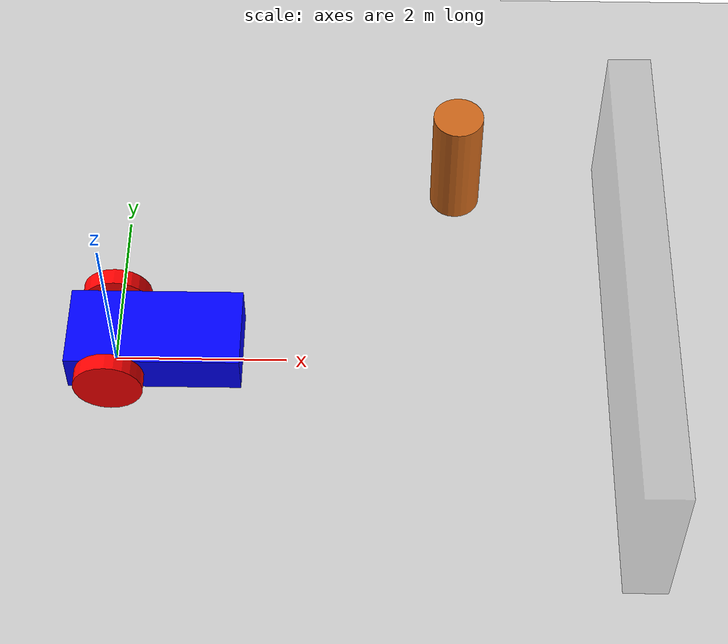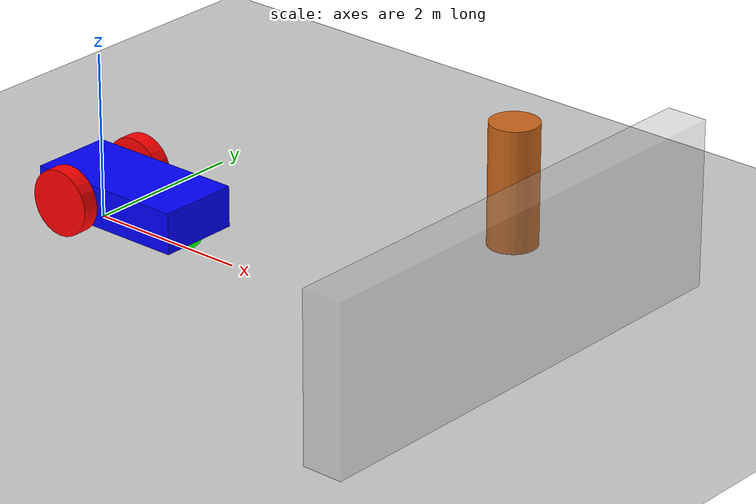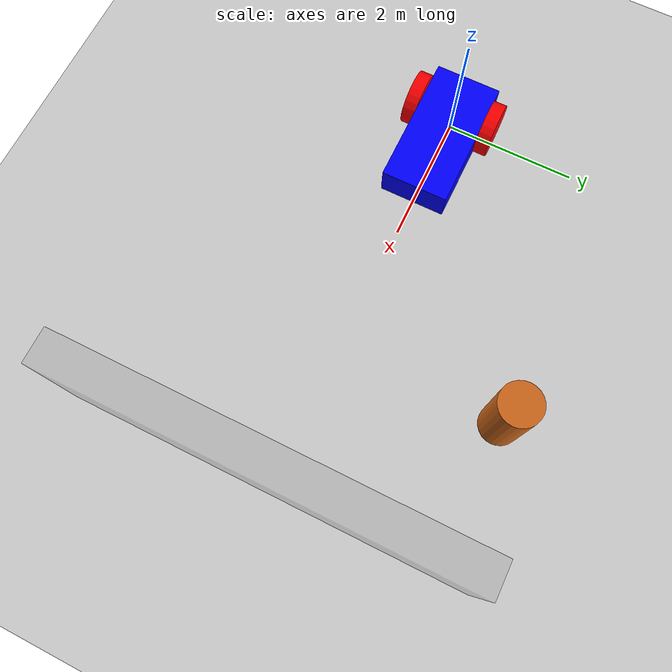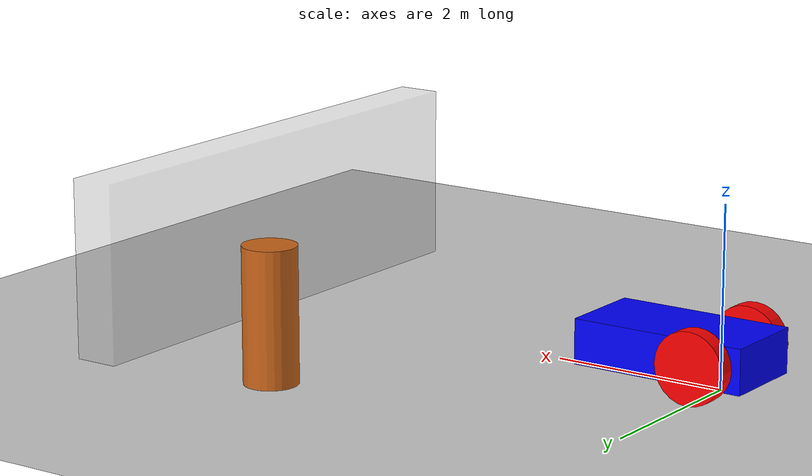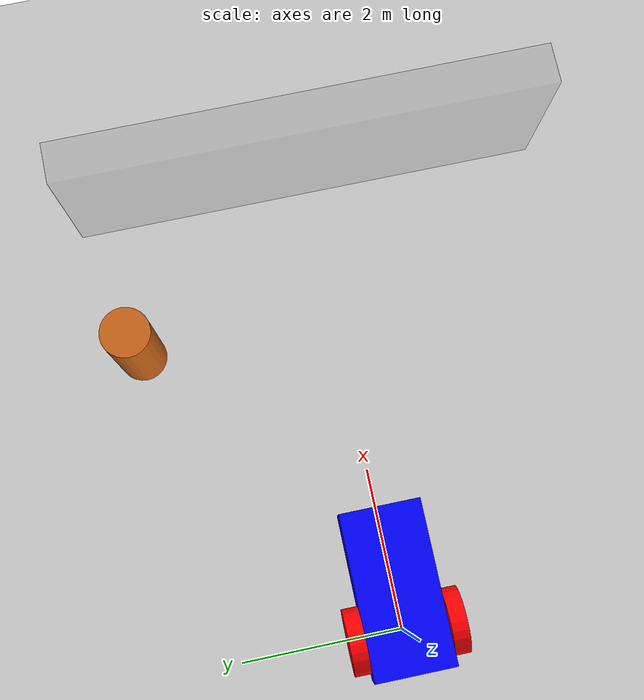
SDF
<?xml version="1.0"?>
<sdf version="1.8">
  <world name="car_world">
    <physics name="1ms" type="ignored">
      <max_step_size>0.001</max_step_size>
      <real_time_factor>1.0</real_time_factor>
    </physics>
    <plugin filename="libgz-sim-sensors-system.so" name="gz::sim::systems::Sensors">
      <render_engine>ogre2</render_engine>
    </plugin>
    <plugin filename="libgz-sim-imu-system.so" name="gz::sim::systems::Imu" />
    <plugin filename="gz-sim-physics-system" name="gz::sim::systems::Physics" />
    <plugin filename="gz-sim-user-commands-system" name="gz::sim::systems::UserCommands" />
    <plugin filename="gz-sim-scene-broadcaster-system" name="gz::sim::systems::SceneBroadcaster" />
    <light type="directional" name="sun">
      <cast_shadows>true</cast_shadows>
      <pose>0 0 10 0 0 0</pose>
      <diffuse>0.8 0.8 0.8 1</diffuse>
      <specular>0.2 0.2 0.2 1</specular>
      <attenuation>
        <range>1000</range>
        <constant>0.9</constant>
        <linear>0.01</linear>
        <quadratic>0.001</quadratic>
      </attenuation>
      <direction>-0.5 0.1 -0.9</direction>
    </light>
    <model name="ground_plane">
      <static>true</static>
      <link name="link">
        <collision name="collision">
          <geometry>
            <plane>
              <normal>0 0 1</normal>
            </plane>
          </geometry>
        </collision>
        <visual name="visual">
          <geometry>
            <plane>
              <normal>0 0 1</normal>
              <size>100 100</size>
            </plane>
          </geometry>
          <material>
            <ambient>0.8 0.8 0.8 1</ambient>
            <diffuse>0.8 0.8 0.8 1</diffuse>
            <specular>0.8 0.8 0.8 1</specular>
          </material>
        </visual>
      </link>
    </model>
    <!-- Single source of truth for the robot: models/vehicle_blue/model.sdf. Resolved via GZ_SIM_RESOURCE_PATH, set in launch/sim.launch.py -->
    <include>
      <uri>model://vehicle_blue</uri>
      <pose>0 0 0 0 0 0</pose>
    </include>
    <!-- Obstacles. Without something in range the gpu_lidar returns inf on every
         beam and RViz has nothing to draw, so the testbed looks broken. -->
    <model name="wall_front">
      <static>true</static>
      <pose>6 0 1 0 0 0</pose>
      <link name="link">
        <visual name="visual">
          <geometry><box><size>0.5 6 2</size></box></geometry>
          <!-- Weak lidar return: the barrier is meant to look like dust, not
               a hard obstacle. gz-sensors maps laser_retro -> point intensity. -->
          <laser_retro>0</laser_retro>
          <transparency>0.7</transparency>
          <material>
            <ambient>0.6 0.6 0.6 0.3</ambient>
            <diffuse>0.6 0.6 0.6 0.3</diffuse>
          </material>
        </visual>
        <collision name="collision">
          <geometry><box><size>0.5 6 2</size></box></geometry>
        </collision>
      </link>
    </model>
    <model name="pillar_left">
      <static>true</static>
      <pose>4 2.5 0.75 0 0 0</pose>
      <link name="link">
        <visual name="visual">
          <geometry><cylinder><radius>0.3</radius><length>1.5</length></cylinder></geometry>
          <!-- Retroreflective: the poles come back hot in the intensity field.
               2000 is gz-sensors' maximum; higher values are clamped to it. -->
          <laser_retro>2000</laser_retro>
          <material>
            <ambient>0.8 0.4 0.1 1</ambient>
            <diffuse>0.8 0.4 0.1 1</diffuse>
          </material>
        </visual>
        <collision name="collision">
          <geometry><cylinder><radius>0.3</radius><length>1.5</length></cylinder></geometry>
        </collision>
      </link>
    </model>
  </world>
</sdf>

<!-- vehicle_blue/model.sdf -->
<sdf version="1.8">
  <model name="vehicle_blue" canonical_link="chassis">
    <plugin filename="libgz-sim-diff-drive-system.so" name="gz::sim::systems::DiffDrive">
      <left_joint>left_wheel_joint</left_joint>
      <right_joint>right_wheel_joint</right_joint>
      <wheel_separation>1.2</wheel_separation>
      <wheel_radius>0.4</wheel_radius>
      <odom_publish_frequency>50</odom_publish_frequency>
      <topic>cmd_vel</topic>
      <!-- Unscoped names: gz defaults to vehicle_blue/chassis, which would not
           match the frames robot_state_publisher derives from this file. -->
      <frame_id>odom</frame_id>
      <child_frame_id>chassis</child_frame_id>
    </plugin>
    <!-- Publishes wheel angles so robot_state_publisher can animate the TF tree -->
    <plugin filename="libgz-sim-joint-state-publisher-system.so" name="gz::sim::systems::JointStatePublisher" />
    <!-- chassis -->
    <link name="chassis">
      <pose relative_to="__model__">0.5 0 0.4 0 0 0</pose>
      <inertial>
        <!-- inertial properties of the link mass, inertia matix -->
        <mass>1.14395</mass>
        <inertia>
          <ixx>0.095329</ixx>
          <ixy>0</ixy>
          <ixz>0</ixz>
          <iyy>0.381317</iyy>
          <iyz>0</iyz>
          <izz>0.476646</izz>
        </inertia>
      </inertial>
      <visual name="visual">
        <geometry>
          <box>
            <size>2.0 1.0 0.5</size>
          </box>
        </geometry>
        <!-- Color of the link -->
        <material>
          <ambient>0.0 0.0 1.0 1</ambient>
          <diffuse>0.0 0.0 1.0 1</diffuse>
          <specular>0.0 0.0 1.0 1</specular>
        </material>
      </visual>
      <collision name="collision">
        <geometry>
          <box>
            <size>2.0 1.0 0.5</size>
          </box>
        </geometry>
      </collision>
      <sensor name="imu_sensor" type="imu">
        <always_on>1</always_on>
        <update_rate>1</update_rate>
        <visualize>true</visualize>
        <topic>imu</topic>
        <gz_frame_id>chassis</gz_frame_id>
      </sensor>
      <sensor name="gpu_lidar" type="gpu_lidar">
        <pose relative_to="lidar_frame">0 0 0 0 0 0</pose>
        <topic>lidar</topic>
        <gz_frame_id>chassis</gz_frame_id>
        <update_rate>10</update_rate>
        <ray>
          <scan>
            <horizontal>
              <samples>640</samples>
              <resolution>1</resolution>
              <min_angle>-1.396263</min_angle>
              <max_angle>1.396263</max_angle>
            </horizontal>
            <vertical>
              <samples>1</samples>
              <resolution>0.01</resolution>
              <min_angle>0</min_angle>
              <max_angle>0</max_angle>
            </vertical>
          </scan>
          <range>
            <min>0.08</min>
            <max>10.0</max>
            <resolution>0.01</resolution>
          </range>
        </ray>
        <always_on>1</always_on>
        <visualize>true</visualize>
      </sensor>
    </link>
    <frame name="lidar_frame" attached_to="chassis">
      <pose>0.8 0 0.5 0 0 0</pose>
    </frame>
    <!-- Left wheel -->
    <link name="left_wheel">
      <pose relative_to="chassis">-0.5 0.6 0 -1.5707 0 0</pose>
      <!-- angles are in radian -->
      <inertial>
        <mass>1</mass>
        <inertia>
          <ixx>0.043333</ixx>
          <ixy>0</ixy>
          <ixz>0</ixz>
          <iyy>0.043333</iyy>
          <iyz>0</iyz>
          <izz>0.08</izz>
        </inertia>
      </inertial>
      <visual name="visual">
        <geometry>
          <cylinder>
            <radius>0.4</radius>
            <length>0.2</length>
          </cylinder>
        </geometry>
        <material>
          <ambient>1.0 0.0 0.0 1</ambient>
          <diffuse>1.0 0.0 0.0 1</diffuse>
          <specular>1.0 0.0 0.0 1</specular>
        </material>
      </visual>
      <collision name="collision">
        <geometry>
          <cylinder>
            <radius>0.4</radius>
            <length>0.2</length>
          </cylinder>
        </geometry>
      </collision>
    </link>
    <!-- The same as left wheel but with different position -->
    <link name="right_wheel">
      <pose relative_to="chassis">-0.5 -0.6 0 -1.5707 0 0</pose>
      <!-- angles are in radian -->
      <inertial>
        <mass>1</mass>
        <inertia>
          <ixx>0.043333</ixx>
          <ixy>0</ixy>
          <ixz>0</ixz>
          <iyy>0.043333</iyy>
          <iyz>0</iyz>
          <izz>0.08</izz>
        </inertia>
      </inertial>
      <visual name="visual">
        <geometry>
          <cylinder>
            <radius>0.4</radius>
            <length>0.2</length>
          </cylinder>
        </geometry>
        <material>
          <ambient>1.0 0.0 0.0 1</ambient>
          <diffuse>1.0 0.0 0.0 1</diffuse>
          <specular>1.0 0.0 0.0 1</specular>
        </material>
      </visual>
      <collision name="collision">
        <geometry>
          <cylinder>
            <radius>0.4</radius>
            <length>0.2</length>
          </cylinder>
        </geometry>
      </collision>
    </link>
    <!-- arbitrary frame -->
    <frame name="caster_frame" attached_to="chassis">
      <pose>0.8 0 -0.2 0 0 0</pose>
    </frame>
    <!-- caster wheel -->
    <link name="caster">
      <pose relative_to="caster_frame" />
      <inertial>
        <mass>1</mass>
        <inertia>
          <ixx>0.016</ixx>
          <ixy>0</ixy>
          <ixz>0</ixz>
          <iyy>0.016</iyy>
          <iyz>0</iyz>
          <izz>0.016</izz>
        </inertia>
      </inertial>
      <visual name="visual">
        <geometry>
          <sphere>
            <radius>0.2</radius>
          </sphere>
        </geometry>
        <material>
          <ambient>0.0 1 0.0 1</ambient>
          <diffuse>0.0 1 0.0 1</diffuse>
          <specular>0.0 1 0.0 1</specular>
        </material>
      </visual>
      <collision name="collision">
        <geometry>
          <sphere>
            <radius>0.2</radius>
          </sphere>
        </geometry>
      </collision>
    </link>
    <!-- left wheel joint -->
    <joint name="left_wheel_joint" type="revolute">
      <pose relative_to="left_wheel" />
      <parent>chassis</parent>
      <child>left_wheel</child>
      <axis>
        <xyz expressed_in="__model__">0 1 0</xyz>
        <!-- can be descired to any frame or even arbitrary frames -->
        <limit>
          <lower>-1.79769e+308</lower>
          <!-- negative infinity -->
          <upper>1.79769e+308</upper>
          <!-- positive infinity -->
        </limit>
      </axis>
    </joint>
    <!-- right wheel joint -->
    <joint name="right_wheel_joint" type="revolute">
      <pose relative_to="right_wheel" />
      <parent>chassis</parent>
      <child>right_wheel</child>
      <axis>
        <xyz expressed_in="__model__">0 1 0</xyz>
        <limit>
          <lower>-1.79769e+308</lower>
          <!-- negative infinity -->
          <upper>1.79769e+308</upper>
          <!-- positive infinity -->
        </limit>
      </axis>
    </joint>
    <!-- caster wheel joint -->
    <!-- pose default value is the child -->
    <joint name="caster_wheel" type="ball">
      <parent>chassis</parent>
      <child>caster</child>
    </joint>
  </model>
</sdf>
